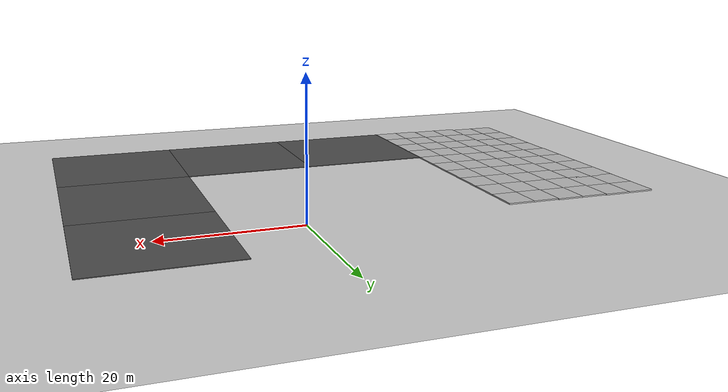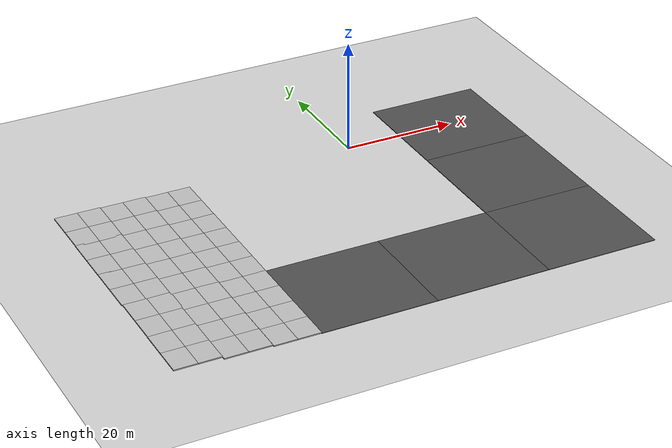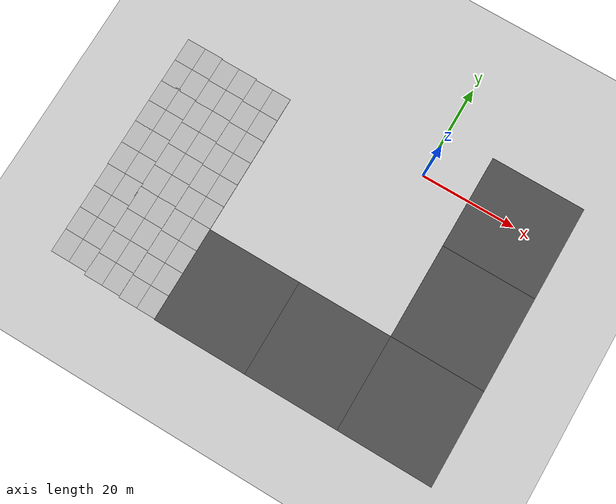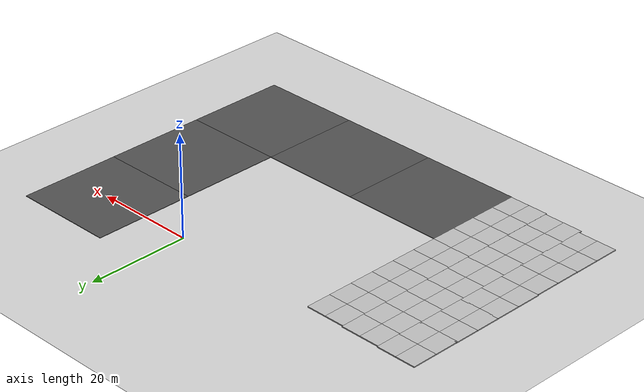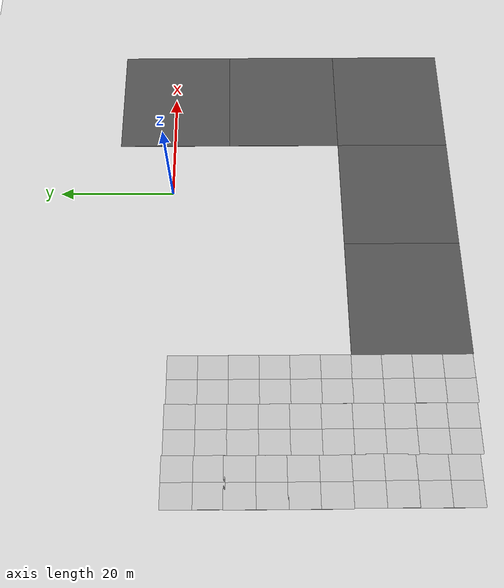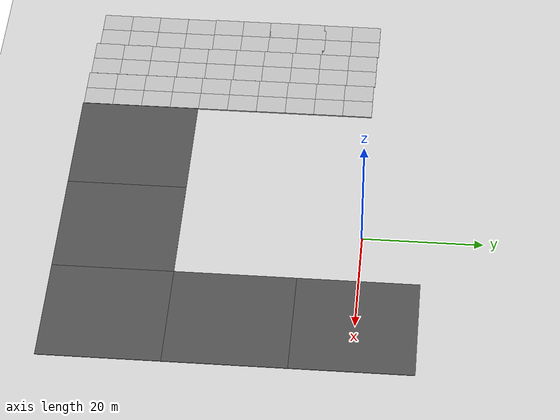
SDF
<sdf version="1.6">
 <world name="default">
  <model name="ground_plane">
   <static>1</static>
   <link name="link">
    <collision name="collision">
     <geometry><plane><normal>0 0 1</normal><size>100 100</size></plane></geometry>
     <surface><friction><ode><mu>100</mu><mu2>50</mu2></ode></friction></surface>
    </collision>
    <visual name="visual">
     <cast_shadows>0</cast_shadows>
     <geometry><plane><normal>0 0 1</normal><size>100 100</size></plane></geometry>
     <material>
      <script><uri>file://media/materials/scripts/gazebo.material</uri><name>Gazebo/Grey</name></script>
     </material>
    </visual>
   </link>
  </model>
  <model name="asphalt_plane_1">
   <static>1</static>
   <link name="link">
    <collision name="collision"><geometry><box><size>20 20 0.1</size></box></geometry></collision>
    <visual name="visual">
     <cast_shadows>0</cast_shadows>
     <geometry><box><size>20 20 0.1</size></box></geometry>
     <material>
      <script>
       <uri>model://asphalt_plane/materials/scripts</uri>
       <uri>model://asphalt_plane/materials/textures</uri>
       <name>vrc/asphalt</name>
      </script>
     </material>
    </visual>
   </link>
   <pose>0 -40 0 0 -0 0</pose>
  </model>
  <model name="asphalt_plane_2">
   <static>1</static>
   <link name="link">
    <collision name="collision"><geometry><box><size>20 20 0.1</size></box></geometry></collision>
    <visual name="visual">
     <cast_shadows>0</cast_shadows>
     <geometry><box><size>20 20 0.1</size></box></geometry>
     <material>
      <script>
       <uri>model://asphalt_plane/materials/scripts</uri>
       <uri>model://asphalt_plane/materials/textures</uri>
       <name>vrc/asphalt</name>
      </script>
     </material>
    </visual>
   </link>
   <pose>-20 -40 0 0 -0 0</pose>
  </model>
  <model name="asphalt_plane_8">
   <static>1</static>
   <link name="link">
    <collision name="collision"><geometry><box><size>20 20 0.1</size></box></geometry></collision>
    <visual name="visual">
     <cast_shadows>0</cast_shadows>
     <geometry><box><size>20 20 0.1</size></box></geometry>
     <material>
      <script>
       <uri>model://asphalt_plane/materials/scripts</uri>
       <uri>model://asphalt_plane/materials/textures</uri>
       <name>vrc/asphalt</name>
      </script>
     </material>
    </visual>
   </link>
   <pose>20 0 0 0 -0 0</pose>
  </model>
  <model name="asphalt_plane_9">
   <static>1</static>
   <link name="link">
    <collision name="collision"><geometry><box><size>20 20 0.1</size></box></geometry></collision>
    <visual name="visual">
     <cast_shadows>0</cast_shadows>
     <geometry><box><size>20 20 0.1</size></box></geometry>
     <material>
      <script>
       <uri>model://asphalt_plane/materials/scripts</uri>
       <uri>model://asphalt_plane/materials/textures</uri>
       <name>vrc/asphalt</name>
      </script>
     </material>
    </visual>
   </link>
   <pose>20 -20 0 0 -0 0</pose>
  </model>
  <model name="asphalt_plane_10">
   <static>1</static>
   <link name="link">
    <collision name="collision"><geometry><box><size>20 20 0.1</size></box></geometry></collision>
    <visual name="visual">
     <cast_shadows>0</cast_shadows>
     <geometry><box><size>20 20 0.1</size></box></geometry>
     <material>
      <script>
       <uri>model://asphalt_plane/materials/scripts</uri>
       <uri>model://asphalt_plane/materials/textures</uri>
       <name>vrc/asphalt</name>
      </script>
     </material>
    </visual>
   </link>
   <pose>20 -40 0 0 -0 0</pose>
  </model>
  <model name="mud_box_26_clone_clone_clone_clone_0">
   <static>1</static>
   <link name="link">
    <collision name="collision"><geometry><box><size>8 10 0.2</size></box></geometry></collision>
    <visual name="visual_1">
     <pose>-2 2.5 0 0 -0 0</pose>
     <cast_shadows>0</cast_shadows>
     <geometry><box><size>4 5 0.2</size></box></geometry>
     <material>
      <script>
       <uri>model://mud_box/materials/scripts</uri>
       <uri>model://mud_box/materials/textures</uri>
       <name>vrc/mud</name>
      </script>
     </material>
    </visual>
    <visual name="visual_2">
     <pose>2 2.5 0 0 -0 0</pose>
     <cast_shadows>0</cast_shadows>
     <geometry><box><size>4 5 0.2</size></box></geometry>
     <material>
      <script>
       <uri>model://mud_box/materials/scripts</uri>
       <uri>model://mud_box/materials/textures</uri>
       <name>vrc/mud</name>
      </script>
     </material>
    </visual>
    <visual name="visual_3">
     <pose>2 -2.5 0 0 -0 0</pose>
     <cast_shadows>0</cast_shadows>
     <geometry><box><size>4 5 0.2</size></box></geometry>
     <material>
      <script>
       <uri>model://mud_box/materials/scripts</uri>
       <uri>model://mud_box/materials/textures</uri>
       <name>vrc/mud</name>
      </script>
     </material>
    </visual>
    <visual name="visual_4">
     <pose>-2 -2.5 0 0 -0 0</pose>
     <cast_shadows>0</cast_shadows>
     <geometry><box><size>4 5 0.2</size></box></geometry>
     <material>
      <script>
       <uri>model://mud_box/materials/scripts</uri>
       <uri>model://mud_box/materials/textures</uri>
       <name>vrc/mud</name>
      </script>
     </material>
    </visual>
   </link>
   <pose>-33.9983 -4.95526 0 0 -0 0</pose>
  </model>
  <model name="mud_box_26_clone_clone_clone_clone_1">
   <static>1</static>
   <link name="link">
    <collision name="collision"><geometry><box><size>8 10 0.2</size></box></geometry></collision>
    <visual name="visual_1">
     <pose>-2 2.5 0 0 -0 0</pose>
     <cast_shadows>0</cast_shadows>
     <geometry><box><size>4 5 0.2</size></box></geometry>
     <material>
      <script>
       <uri>model://mud_box/materials/scripts</uri>
       <uri>model://mud_box/materials/textures</uri>
       <name>vrc/mud</name>
      </script>
     </material>
    </visual>
    <visual name="visual_2">
     <pose>2 2.5 0 0 -0 0</pose>
     <cast_shadows>0</cast_shadows>
     <geometry><box><size>4 5 0.2</size></box></geometry>
     <material>
      <script>
       <uri>model://mud_box/materials/scripts</uri>
       <uri>model://mud_box/materials/textures</uri>
       <name>vrc/mud</name>
      </script>
     </material>
    </visual>
    <visual name="visual_3">
     <pose>2 -2.5 0 0 -0 0</pose>
     <cast_shadows>0</cast_shadows>
     <geometry><box><size>4 5 0.2</size></box></geometry>
     <material>
      <script>
       <uri>model://mud_box/materials/scripts</uri>
       <uri>model://mud_box/materials/textures</uri>
       <name>vrc/mud</name>
      </script>
     </material>
    </visual>
    <visual name="visual_4">
     <pose>-2 -2.5 0 0 -0 0</pose>
     <cast_shadows>0</cast_shadows>
     <geometry><box><size>4 5 0.2</size></box></geometry>
     <material>
      <script>
       <uri>model://mud_box/materials/scripts</uri>
       <uri>model://mud_box/materials/textures</uri>
       <name>vrc/mud</name>
      </script>
     </material>
    </visual>
   </link>
   <pose>-33.9873 -14.925 0 0 -0 0</pose>
  </model>
  <model name="mud_box_26_clone_clone_clone_clone_2">
   <static>1</static>
   <link name="link">
    <collision name="collision"><geometry><box><size>8 10 0.2</size></box></geometry></collision>
    <visual name="visual_1">
     <pose>-2 2.5 0 0 -0 0</pose>
     <cast_shadows>0</cast_shadows>
     <geometry><box><size>4 5 0.2</size></box></geometry>
     <material>
      <script>
       <uri>model://mud_box/materials/scripts</uri>
       <uri>model://mud_box/materials/textures</uri>
       <name>vrc/mud</name>
      </script>
     </material>
    </visual>
    <visual name="visual_2">
     <pose>2 2.5 0 0 -0 0</pose>
     <cast_shadows>0</cast_shadows>
     <geometry><box><size>4 5 0.2</size></box></geometry>
     <material>
      <script>
       <uri>model://mud_box/materials/scripts</uri>
       <uri>model://mud_box/materials/textures</uri>
       <name>vrc/mud</name>
      </script>
     </material>
    </visual>
    <visual name="visual_3">
     <pose>2 -2.5 0 0 -0 0</pose>
     <cast_shadows>0</cast_shadows>
     <geometry><box><size>4 5 0.2</size></box></geometry>
     <material>
      <script>
       <uri>model://mud_box/materials/scripts</uri>
       <uri>model://mud_box/materials/textures</uri>
       <name>vrc/mud</name>
      </script>
     </material>
    </visual>
    <visual name="visual_4">
     <pose>-2 -2.5 0 0 -0 0</pose>
     <cast_shadows>0</cast_shadows>
     <geometry><box><size>4 5 0.2</size></box></geometry>
     <material>
      <script>
       <uri>model://mud_box/materials/scripts</uri>
       <uri>model://mud_box/materials/textures</uri>
       <name>vrc/mud</name>
      </script>
     </material>
    </visual>
   </link>
   <pose>-33.9731 -24.924 0 0 -0 0</pose>
  </model>
  <model name="mud_box_26_clone_clone_clone_clone_2_clone">
   <static>1</static>
   <link name="link">
    <collision name="collision"><geometry><box><size>8 10 0.2</size></box></geometry></collision>
    <visual name="visual_1">
     <pose>-2 2.5 0 0 -0 0</pose>
     <cast_shadows>0</cast_shadows>
     <geometry><box><size>4 5 0.2</size></box></geometry>
     <material>
      <script>
       <uri>model://mud_box/materials/scripts</uri>
       <uri>model://mud_box/materials/textures</uri>
       <name>vrc/mud</name>
      </script>
     </material>
    </visual>
    <visual name="visual_2">
     <pose>2 2.5 0 0 -0 0</pose>
     <cast_shadows>0</cast_shadows>
     <geometry><box><size>4 5 0.2</size></box></geometry>
     <material>
      <script>
       <uri>model://mud_box/materials/scripts</uri>
       <uri>model://mud_box/materials/textures</uri>
       <name>vrc/mud</name>
      </script>
     </material>
    </visual>
    <visual name="visual_3">
     <pose>2 -2.5 0 0 -0 0</pose>
     <cast_shadows>0</cast_shadows>
     <geometry><box><size>4 5 0.2</size></box></geometry>
     <material>
      <script>
       <uri>model://mud_box/materials/scripts</uri>
       <uri>model://mud_box/materials/textures</uri>
       <name>vrc/mud</name>
      </script>
     </material>
    </visual>
    <visual name="visual_4">
     <pose>-2 -2.5 0 0 -0 0</pose>
     <cast_shadows>0</cast_shadows>
     <geometry><box><size>4 5 0.2</size></box></geometry>
     <material>
      <script>
       <uri>model://mud_box/materials/scripts</uri>
       <uri>model://mud_box/materials/textures</uri>
       <name>vrc/mud</name>
      </script>
     </material>
    </visual>
   </link>
   <pose>-33.9668 -34.8668 0 0 -0 0</pose>
  </model>
  <model name="mud_box_26_clone_clone_clone_clone_2_clone_clone">
   <static>1</static>
   <link name="link">
    <collision name="collision"><geometry><box><size>8 10 0.2</size></box></geometry></collision>
    <visual name="visual_1">
     <pose>-2 2.5 0 0 -0 0</pose>
     <cast_shadows>0</cast_shadows>
     <geometry><box><size>4 5 0.2</size></box></geometry>
     <material>
      <script>
       <uri>model://mud_box/materials/scripts</uri>
       <uri>model://mud_box/materials/textures</uri>
       <name>vrc/mud</name>
      </script>
     </material>
    </visual>
    <visual name="visual_2">
     <pose>2 2.5 0 0 -0 0</pose>
     <cast_shadows>0</cast_shadows>
     <geometry><box><size>4 5 0.2</size></box></geometry>
     <material>
      <script>
       <uri>model://mud_box/materials/scripts</uri>
       <uri>model://mud_box/materials/textures</uri>
       <name>vrc/mud</name>
      </script>
     </material>
    </visual>
    <visual name="visual_3">
     <pose>2 -2.5 0 0 -0 0</pose>
     <cast_shadows>0</cast_shadows>
     <geometry><box><size>4 5 0.2</size></box></geometry>
     <material>
      <script>
       <uri>model://mud_box/materials/scripts</uri>
       <uri>model://mud_box/materials/textures</uri>
       <name>vrc/mud</name>
      </script>
     </material>
    </visual>
    <visual name="visual_4">
     <pose>-2 -2.5 0 0 -0 0</pose>
     <cast_shadows>0</cast_shadows>
     <geometry><box><size>4 5 0.2</size></box></geometry>
     <material>
      <script>
       <uri>model://mud_box/materials/scripts</uri>
       <uri>model://mud_box/materials/textures</uri>
       <name>vrc/mud</name>
      </script>
     </material>
    </visual>
   </link>
   <pose>-33.958 -44.8582 0 0 -0 0</pose>
  </model>
  <model name="mud_box_26_clone_clone_clone_clone_2_clone_clone_clone_clone_clone_clone_clone_clone">
   <static>1</static>
   <link name="link">
    <collision name="collision"><geometry><box><size>8 10 0.2</size></box></geometry></collision>
    <visual name="visual_1">
     <pose>-2 2.5 0 0 -0 0</pose>
     <cast_shadows>0</cast_shadows>
     <geometry><box><size>4 5 0.2</size></box></geometry>
     <material>
      <script>
       <uri>model://mud_box/materials/scripts</uri>
       <uri>model://mud_box/materials/textures</uri>
       <name>vrc/mud</name>
      </script>
     </material>
    </visual>
    <visual name="visual_2">
     <pose>2 2.5 0 0 -0 0</pose>
     <cast_shadows>0</cast_shadows>
     <geometry><box><size>4 5 0.2</size></box></geometry>
     <material>
      <script>
       <uri>model://mud_box/materials/scripts</uri>
       <uri>model://mud_box/materials/textures</uri>
       <name>vrc/mud</name>
      </script>
     </material>
    </visual>
    <visual name="visual_3">
     <pose>2 -2.5 0 0 -0 0</pose>
     <cast_shadows>0</cast_shadows>
     <geometry><box><size>4 5 0.2</size></box></geometry>
     <material>
      <script>
       <uri>model://mud_box/materials/scripts</uri>
       <uri>model://mud_box/materials/textures</uri>
       <name>vrc/mud</name>
      </script>
     </material>
    </visual>
    <visual name="visual_4">
     <pose>-2 -2.5 0 0 -0 0</pose>
     <cast_shadows>0</cast_shadows>
     <geometry><box><size>4 5 0.2</size></box></geometry>
     <material>
      <script>
       <uri>model://mud_box/materials/scripts</uri>
       <uri>model://mud_box/materials/textures</uri>
       <name>vrc/mud</name>
      </script>
     </material>
    </visual>
   </link>
   <pose>-41.9625 -4.74067 0 0 -0 0</pose>
  </model>
  <model name="mud_box_26_clone_clone_clone_clone_2_clone_clone_clone_clone_clone_clone_clone_clone_clone">
   <static>1</static>
   <link name="link">
    <collision name="collision"><geometry><box><size>8 10 0.2</size></box></geometry></collision>
    <visual name="visual_1">
     <pose>-2 2.5 0 0 -0 0</pose>
     <cast_shadows>0</cast_shadows>
     <geometry><box><size>4 5 0.2</size></box></geometry>
     <material>
      <script>
       <uri>model://mud_box/materials/scripts</uri>
       <uri>model://mud_box/materials/textures</uri>
       <name>vrc/mud</name>
      </script>
     </material>
    </visual>
    <visual name="visual_2">
     <pose>2 2.5 0 0 -0 0</pose>
     <cast_shadows>0</cast_shadows>
     <geometry><box><size>4 5 0.2</size></box></geometry>
     <material>
      <script>
       <uri>model://mud_box/materials/scripts</uri>
       <uri>model://mud_box/materials/textures</uri>
       <name>vrc/mud</name>
      </script>
     </material>
    </visual>
    <visual name="visual_3">
     <pose>2 -2.5 0 0 -0 0</pose>
     <cast_shadows>0</cast_shadows>
     <geometry><box><size>4 5 0.2</size></box></geometry>
     <material>
      <script>
       <uri>model://mud_box/materials/scripts</uri>
       <uri>model://mud_box/materials/textures</uri>
       <name>vrc/mud</name>
      </script>
     </material>
    </visual>
    <visual name="visual_4">
     <pose>-2 -2.5 0 0 -0 0</pose>
     <cast_shadows>0</cast_shadows>
     <geometry><box><size>4 5 0.2</size></box></geometry>
     <material>
      <script>
       <uri>model://mud_box/materials/scripts</uri>
       <uri>model://mud_box/materials/textures</uri>
       <name>vrc/mud</name>
      </script>
     </material>
    </visual>
   </link>
   <pose>-41.9878 -14.6949 0 0 -0 0</pose>
  </model>
  <model name="mud_box_26_clone_clone_clone_clone_2_clone_clone_clone_clone_clone_clone_clone_clone_clone_0">
   <static>1</static>
   <link name="link">
    <collision name="collision"><geometry><box><size>8 10 0.2</size></box></geometry></collision>
    <visual name="visual_1">
     <pose>-2 2.5 0 0 -0 0</pose>
     <cast_shadows>0</cast_shadows>
     <geometry><box><size>4 5 0.2</size></box></geometry>
     <material>
      <script>
       <uri>model://mud_box/materials/scripts</uri>
       <uri>model://mud_box/materials/textures</uri>
       <name>vrc/mud</name>
      </script>
     </material>
    </visual>
    <visual name="visual_2">
     <pose>2 2.5 0 0 -0 0</pose>
     <cast_shadows>0</cast_shadows>
     <geometry><box><size>4 5 0.2</size></box></geometry>
     <material>
      <script>
       <uri>model://mud_box/materials/scripts</uri>
       <uri>model://mud_box/materials/textures</uri>
       <name>vrc/mud</name>
      </script>
     </material>
    </visual>
    <visual name="visual_3">
     <pose>2 -2.5 0 0 -0 0</pose>
     <cast_shadows>0</cast_shadows>
     <geometry><box><size>4 5 0.2</size></box></geometry>
     <material>
      <script>
       <uri>model://mud_box/materials/scripts</uri>
       <uri>model://mud_box/materials/textures</uri>
       <name>vrc/mud</name>
      </script>
     </material>
    </visual>
    <visual name="visual_4">
     <pose>-2 -2.5 0 0 -0 0</pose>
     <cast_shadows>0</cast_shadows>
     <geometry><box><size>4 5 0.2</size></box></geometry>
     <material>
      <script>
       <uri>model://mud_box/materials/scripts</uri>
       <uri>model://mud_box/materials/textures</uri>
       <name>vrc/mud</name>
      </script>
     </material>
    </visual>
   </link>
   <pose>-41.9768 -24.6492 0 0 -0 0</pose>
  </model>
  <model name="mud_box_26_clone_clone_clone_clone_2_clone_clone_clone_clone_clone_clone_clone_clone_clone_1">
   <static>1</static>
   <link name="link">
    <collision name="collision"><geometry><box><size>8 10 0.2</size></box></geometry></collision>
    <visual name="visual_1">
     <pose>-2 2.5 0 0 -0 0</pose>
     <cast_shadows>0</cast_shadows>
     <geometry><box><size>4 5 0.2</size></box></geometry>
     <material>
      <script>
       <uri>model://mud_box/materials/scripts</uri>
       <uri>model://mud_box/materials/textures</uri>
       <name>vrc/mud</name>
      </script>
     </material>
    </visual>
    <visual name="visual_2">
     <pose>2 2.5 0 0 -0 0</pose>
     <cast_shadows>0</cast_shadows>
     <geometry><box><size>4 5 0.2</size></box></geometry>
     <material>
      <script>
       <uri>model://mud_box/materials/scripts</uri>
       <uri>model://mud_box/materials/textures</uri>
       <name>vrc/mud</name>
      </script>
     </material>
    </visual>
    <visual name="visual_3">
     <pose>2 -2.5 0 0 -0 0</pose>
     <cast_shadows>0</cast_shadows>
     <geometry><box><size>4 5 0.2</size></box></geometry>
     <material>
      <script>
       <uri>model://mud_box/materials/scripts</uri>
       <uri>model://mud_box/materials/textures</uri>
       <name>vrc/mud</name>
      </script>
     </material>
    </visual>
    <visual name="visual_4">
     <pose>-2 -2.5 0 0 -0 0</pose>
     <cast_shadows>0</cast_shadows>
     <geometry><box><size>4 5 0.2</size></box></geometry>
     <material>
      <script>
       <uri>model://mud_box/materials/scripts</uri>
       <uri>model://mud_box/materials/textures</uri>
       <name>vrc/mud</name>
      </script>
     </material>
    </visual>
   </link>
   <pose>-41.9733 -34.594 0 0 -0 0</pose>
  </model>
  <model name="mud_box_26_clone_clone_clone_clone_2_clone_clone_clone_clone_clone_clone_clone_clone_clone_2">
   <static>1</static>
   <link name="link">
    <collision name="collision"><geometry><box><size>8 10 0.2</size></box></geometry></collision>
    <visual name="visual_1">
     <pose>-2 2.5 0 0 -0 0</pose>
     <cast_shadows>0</cast_shadows>
     <geometry><box><size>4 5 0.2</size></box></geometry>
     <material>
      <script>
       <uri>model://mud_box/materials/scripts</uri>
       <uri>model://mud_box/materials/textures</uri>
       <name>vrc/mud</name>
      </script>
     </material>
    </visual>
    <visual name="visual_2">
     <pose>2 2.5 0 0 -0 0</pose>
     <cast_shadows>0</cast_shadows>
     <geometry><box><size>4 5 0.2</size></box></geometry>
     <material>
      <script>
       <uri>model://mud_box/materials/scripts</uri>
       <uri>model://mud_box/materials/textures</uri>
       <name>vrc/mud</name>
      </script>
     </material>
    </visual>
    <visual name="visual_3">
     <pose>2 -2.5 0 0 -0 0</pose>
     <cast_shadows>0</cast_shadows>
     <geometry><box><size>4 5 0.2</size></box></geometry>
     <material>
      <script>
       <uri>model://mud_box/materials/scripts</uri>
       <uri>model://mud_box/materials/textures</uri>
       <name>vrc/mud</name>
      </script>
     </material>
    </visual>
    <visual name="visual_4">
     <pose>-2 -2.5 0 0 -0 0</pose>
     <cast_shadows>0</cast_shadows>
     <geometry><box><size>4 5 0.2</size></box></geometry>
     <material>
      <script>
       <uri>model://mud_box/materials/scripts</uri>
       <uri>model://mud_box/materials/textures</uri>
       <name>vrc/mud</name>
      </script>
     </material>
    </visual>
   </link>
   <pose>-41.9687 -44.5886 0 0 -0 0</pose>
  </model>
  <model name="mud_box_26_clone_clone_clone_clone_2_clone_clone_clone_clone_clone_clone_clone_clone_clone_8">
   <static>1</static>
   <link name="link">
    <collision name="collision"><geometry><box><size>8 10 0.2</size></box></geometry></collision>
    <visual name="visual_1">
     <pose>-2 2.5 0 0 -0 0</pose>
     <cast_shadows>0</cast_shadows>
     <geometry><box><size>4 5 0.2</size></box></geometry>
     <material>
      <script>
       <uri>model://mud_box/materials/scripts</uri>
       <uri>model://mud_box/materials/textures</uri>
       <name>vrc/mud</name>
      </script>
     </material>
    </visual>
    <visual name="visual_2">
     <pose>2 2.5 0 0 -0 0</pose>
     <cast_shadows>0</cast_shadows>
     <geometry><box><size>4 5 0.2</size></box></geometry>
     <material>
      <script>
       <uri>model://mud_box/materials/scripts</uri>
       <uri>model://mud_box/materials/textures</uri>
       <name>vrc/mud</name>
      </script>
     </material>
    </visual>
    <visual name="visual_3">
     <pose>2 -2.5 0 0 -0 0</pose>
     <cast_shadows>0</cast_shadows>
     <geometry><box><size>4 5 0.2</size></box></geometry>
     <material>
      <script>
       <uri>model://mud_box/materials/scripts</uri>
       <uri>model://mud_box/materials/textures</uri>
       <name>vrc/mud</name>
      </script>
     </material>
    </visual>
    <visual name="visual_4">
     <pose>-2 -2.5 0 0 -0 0</pose>
     <cast_shadows>0</cast_shadows>
     <geometry><box><size>4 5 0.2</size></box></geometry>
     <material>
      <script>
       <uri>model://mud_box/materials/scripts</uri>
       <uri>model://mud_box/materials/textures</uri>
       <name>vrc/mud</name>
      </script>
     </material>
    </visual>
   </link>
   <pose>-49.9402 -4.55653 0 0 -0 0</pose>
  </model>
  <model name="mud_box_26_clone_clone_clone_clone_2_clone_clone_clone_clone_clone_clone_clone_clone_clone_9">
   <static>1</static>
   <link name="link">
    <collision name="collision"><geometry><box><size>8 10 0.2</size></box></geometry></collision>
    <visual name="visual_1">
     <pose>-2 2.5 0 0 -0 0</pose>
     <cast_shadows>0</cast_shadows>
     <geometry><box><size>4 5 0.2</size></box></geometry>
     <material>
      <script>
       <uri>model://mud_box/materials/scripts</uri>
       <uri>model://mud_box/materials/textures</uri>
       <name>vrc/mud</name>
      </script>
     </material>
    </visual>
    <visual name="visual_2">
     <pose>2 2.5 0 0 -0 0</pose>
     <cast_shadows>0</cast_shadows>
     <geometry><box><size>4 5 0.2</size></box></geometry>
     <material>
      <script>
       <uri>model://mud_box/materials/scripts</uri>
       <uri>model://mud_box/materials/textures</uri>
       <name>vrc/mud</name>
      </script>
     </material>
    </visual>
    <visual name="visual_3">
     <pose>2 -2.5 0 0 -0 0</pose>
     <cast_shadows>0</cast_shadows>
     <geometry><box><size>4 5 0.2</size></box></geometry>
     <material>
      <script>
       <uri>model://mud_box/materials/scripts</uri>
       <uri>model://mud_box/materials/textures</uri>
       <name>vrc/mud</name>
      </script>
     </material>
    </visual>
    <visual name="visual_4">
     <pose>-2 -2.5 0 0 -0 0</pose>
     <cast_shadows>0</cast_shadows>
     <geometry><box><size>4 5 0.2</size></box></geometry>
     <material>
      <script>
       <uri>model://mud_box/materials/scripts</uri>
       <uri>model://mud_box/materials/textures</uri>
       <name>vrc/mud</name>
      </script>
     </material>
    </visual>
   </link>
   <pose>-49.9806 -14.2055 0 0 -0 0</pose>
  </model>
  <model name="mud_box_26_clone_clone_clone_clone_2_clone_clone_clone_clone_clone_clone_clone_clone_clone_10">
   <static>1</static>
   <link name="link">
    <collision name="collision"><geometry><box><size>8 10 0.2</size></box></geometry></collision>
    <visual name="visual_1">
     <pose>-2 2.5 0 0 -0 0</pose>
     <cast_shadows>0</cast_shadows>
     <geometry><box><size>4 5 0.2</size></box></geometry>
     <material>
      <script>
       <uri>model://mud_box/materials/scripts</uri>
       <uri>model://mud_box/materials/textures</uri>
       <name>vrc/mud</name>
      </script>
     </material>
    </visual>
    <visual name="visual_2">
     <pose>2 2.5 0 0 -0 0</pose>
     <cast_shadows>0</cast_shadows>
     <geometry><box><size>4 5 0.2</size></box></geometry>
     <material>
      <script>
       <uri>model://mud_box/materials/scripts</uri>
       <uri>model://mud_box/materials/textures</uri>
       <name>vrc/mud</name>
      </script>
     </material>
    </visual>
    <visual name="visual_3">
     <pose>2 -2.5 0 0 -0 0</pose>
     <cast_shadows>0</cast_shadows>
     <geometry><box><size>4 5 0.2</size></box></geometry>
     <material>
      <script>
       <uri>model://mud_box/materials/scripts</uri>
       <uri>model://mud_box/materials/textures</uri>
       <name>vrc/mud</name>
      </script>
     </material>
    </visual>
    <visual name="visual_4">
     <pose>-2 -2.5 0 0 -0 0</pose>
     <cast_shadows>0</cast_shadows>
     <geometry><box><size>4 5 0.2</size></box></geometry>
     <material>
      <script>
       <uri>model://mud_box/materials/scripts</uri>
       <uri>model://mud_box/materials/textures</uri>
       <name>vrc/mud</name>
      </script>
     </material>
    </visual>
   </link>
   <pose>-49.9652 -24.0478 0 0 -0 0</pose>
  </model>
  <model name="mud_box_26_clone_clone_clone_clone_2_clone_clone_clone_clone_clone_clone_clone_clone_clone_11">
   <static>1</static>
   <link name="link">
    <collision name="collision"><geometry><box><size>8 10 0.2</size></box></geometry></collision>
    <visual name="visual_1">
     <pose>-2 2.5 0 0 -0 0</pose>
     <cast_shadows>0</cast_shadows>
     <geometry><box><size>4 5 0.2</size></box></geometry>
     <material>
      <script>
       <uri>model://mud_box/materials/scripts</uri>
       <uri>model://mud_box/materials/textures</uri>
       <name>vrc/mud</name>
      </script>
     </material>
    </visual>
    <visual name="visual_2">
     <pose>2 2.5 0 0 -0 0</pose>
     <cast_shadows>0</cast_shadows>
     <geometry><box><size>4 5 0.2</size></box></geometry>
     <material>
      <script>
       <uri>model://mud_box/materials/scripts</uri>
       <uri>model://mud_box/materials/textures</uri>
       <name>vrc/mud</name>
      </script>
     </material>
    </visual>
    <visual name="visual_3">
     <pose>2 -2.5 0 0 -0 0</pose>
     <cast_shadows>0</cast_shadows>
     <geometry><box><size>4 5 0.2</size></box></geometry>
     <material>
      <script>
       <uri>model://mud_box/materials/scripts</uri>
       <uri>model://mud_box/materials/textures</uri>
       <name>vrc/mud</name>
      </script>
     </material>
    </visual>
    <visual name="visual_4">
     <pose>-2 -2.5 0 0 -0 0</pose>
     <cast_shadows>0</cast_shadows>
     <geometry><box><size>4 5 0.2</size></box></geometry>
     <material>
      <script>
       <uri>model://mud_box/materials/scripts</uri>
       <uri>model://mud_box/materials/textures</uri>
       <name>vrc/mud</name>
      </script>
     </material>
    </visual>
   </link>
   <pose>-49.8288 -34.0207 0 0 -0 0</pose>
  </model>
  <model name="mud_box_26_clone_clone_clone_clone_2_clone_clone_clone_clone_clone_clone_clone_clone_clone_12">
   <static>1</static>
   <link name="link">
    <collision name="collision"><geometry><box><size>8 10 0.2</size></box></geometry></collision>
    <visual name="visual_1">
     <pose>-2 2.5 0 0 -0 0</pose>
     <cast_shadows>0</cast_shadows>
     <geometry><box><size>4 5 0.2</size></box></geometry>
     <material>
      <script>
       <uri>model://mud_box/materials/scripts</uri>
       <uri>model://mud_box/materials/textures</uri>
       <name>vrc/mud</name>
      </script>
     </material>
    </visual>
    <visual name="visual_2">
     <pose>2 2.5 0 0 -0 0</pose>
     <cast_shadows>0</cast_shadows>
     <geometry><box><size>4 5 0.2</size></box></geometry>
     <material>
      <script>
       <uri>model://mud_box/materials/scripts</uri>
       <uri>model://mud_box/materials/textures</uri>
       <name>vrc/mud</name>
      </script>
     </material>
    </visual>
    <visual name="visual_3">
     <pose>2 -2.5 0 0 -0 0</pose>
     <cast_shadows>0</cast_shadows>
     <geometry><box><size>4 5 0.2</size></box></geometry>
     <material>
      <script>
       <uri>model://mud_box/materials/scripts</uri>
       <uri>model://mud_box/materials/textures</uri>
       <name>vrc/mud</name>
      </script>
     </material>
    </visual>
    <visual name="visual_4">
     <pose>-2 -2.5 0 0 -0 0</pose>
     <cast_shadows>0</cast_shadows>
     <geometry><box><size>4 5 0.2</size></box></geometry>
     <material>
      <script>
       <uri>model://mud_box/materials/scripts</uri>
       <uri>model://mud_box/materials/textures</uri>
       <name>vrc/mud</name>
      </script>
     </material>
    </visual>
   </link>
   <pose>-49.8632 -43.9715 0 0 -0 0</pose>
  </model>
 </world>
</sdf>
